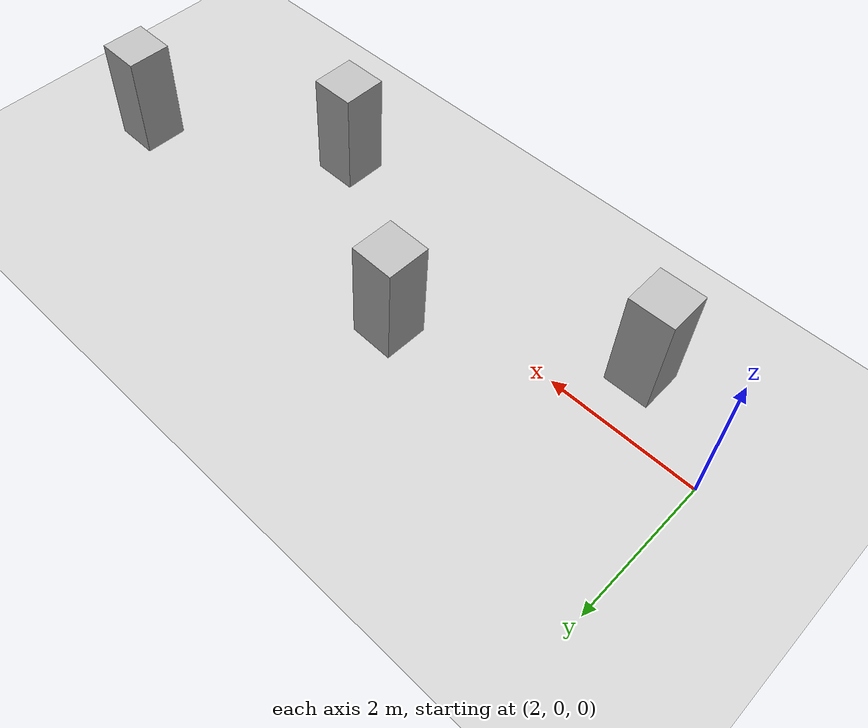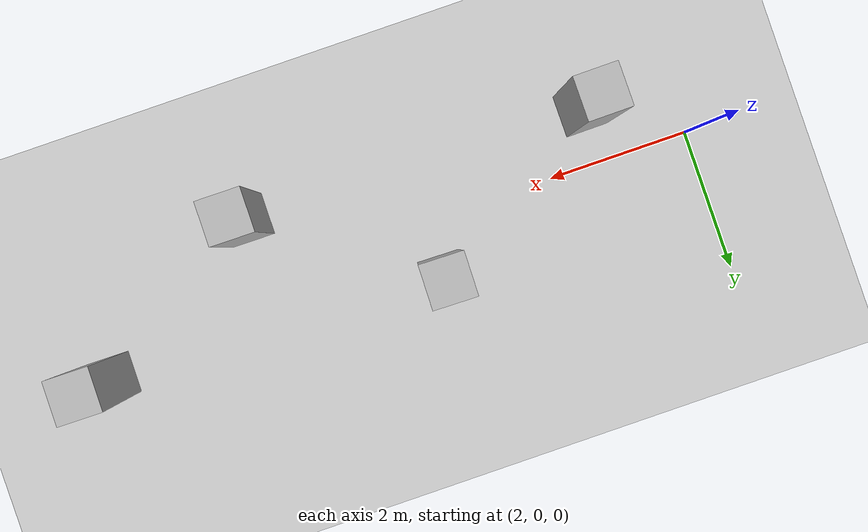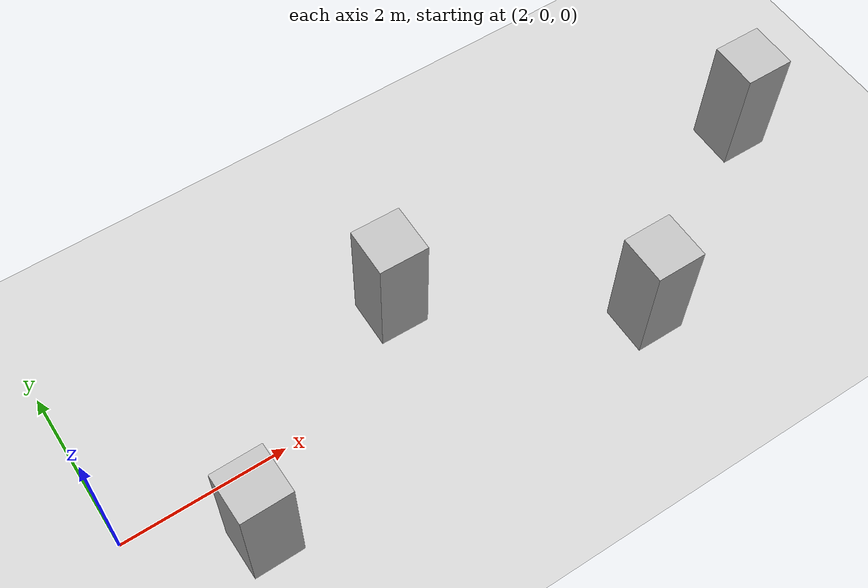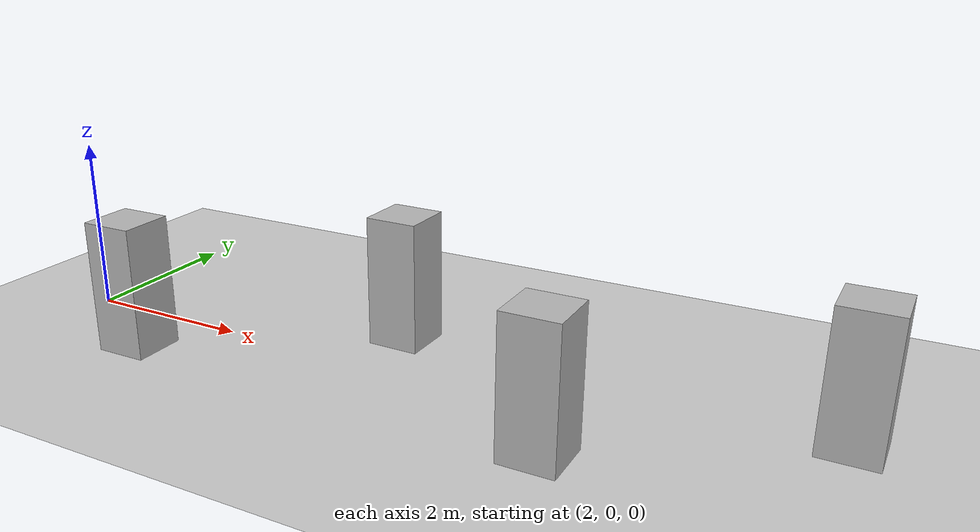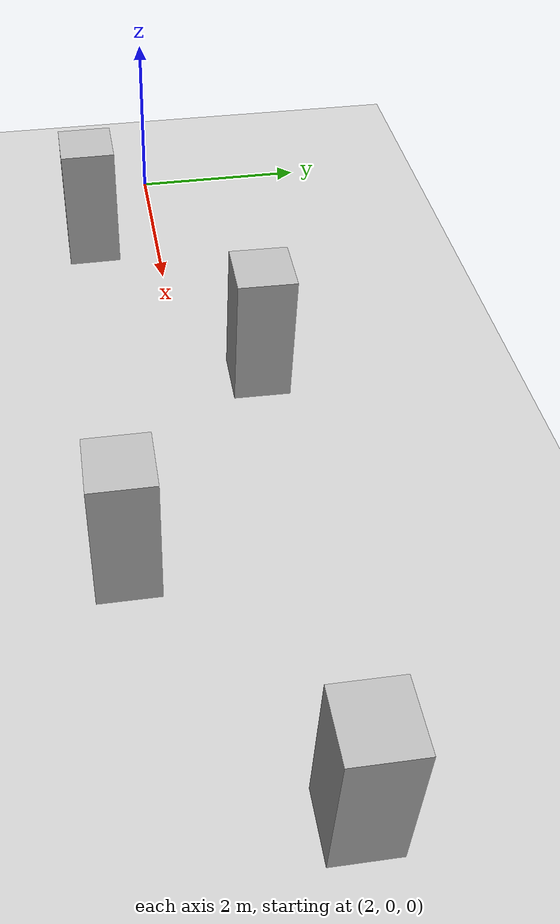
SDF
<?xml version="1.0"?>
<sdf version="1.6">
  <world name="v2-04g-r4-static-s5067">
    <gravity>0 0 -9.81</gravity>
    <physics name="v2_deterministic" type="ode">
      <max_step_size>0.002</max_step_size>
      <real_time_update_rate>500</real_time_update_rate>
    </physics>
    <include>
      <uri>model://sun</uri>
    </include>
    <include>
      <uri>model://ground_plane</uri>
    </include>
    <model name="pillar-1">
      <static>true</static>
      <pose>3.296586810 -0.781788744 0.750000000 0 0 0.007769426</pose>
      <link name="link">
        <collision name="collision">
          <geometry>
            <box>
              <size>0.600000 0.600000 1.500000</size>
            </box>
          </geometry>
        </collision>
        <visual name="visual">
          <geometry>
            <box>
              <size>0.600000 0.600000 1.500000</size>
            </box>
          </geometry>
        </visual>
      </link>
    </model>
    <model name="pillar-2">
      <static>true</static>
      <pose>5.874564676 0.810706665 0.750000000 0 0 -0.018950971</pose>
      <link name="link">
        <collision name="collision">
          <geometry>
            <box>
              <size>0.600000 0.600000 1.500000</size>
            </box>
          </geometry>
        </collision>
        <visual name="visual">
          <geometry>
            <box>
              <size>0.600000 0.600000 1.500000</size>
            </box>
          </geometry>
        </visual>
      </link>
    </model>
    <model name="pillar-3">
      <static>true</static>
      <pose>8.239040116 -0.840570389 0.750000000 0 0 -0.004886532</pose>
      <link name="link">
        <collision name="collision">
          <geometry>
            <box>
              <size>0.600000 0.600000 1.500000</size>
            </box>
          </geometry>
        </collision>
        <visual name="visual">
          <geometry>
            <box>
              <size>0.600000 0.600000 1.500000</size>
            </box>
          </geometry>
        </visual>
      </link>
    </model>
    <model name="pillar-4">
      <static>true</static>
      <pose>10.744360718 0.654904213 0.750000000 0 0 -0.011378535</pose>
      <link name="link">
        <collision name="collision">
          <geometry>
            <box>
              <size>0.600000 0.600000 1.500000</size>
            </box>
          </geometry>
        </collision>
        <visual name="visual">
          <geometry>
            <box>
              <size>0.600000 0.600000 1.500000</size>
            </box>
          </geometry>
        </visual>
      </link>
    </model>
  </world>
</sdf>
